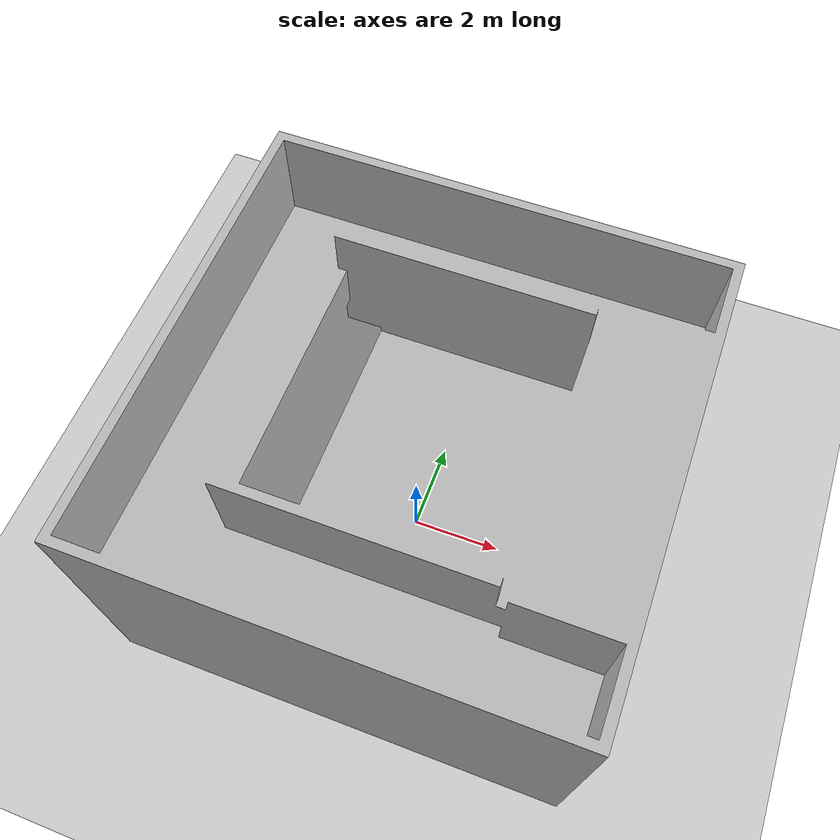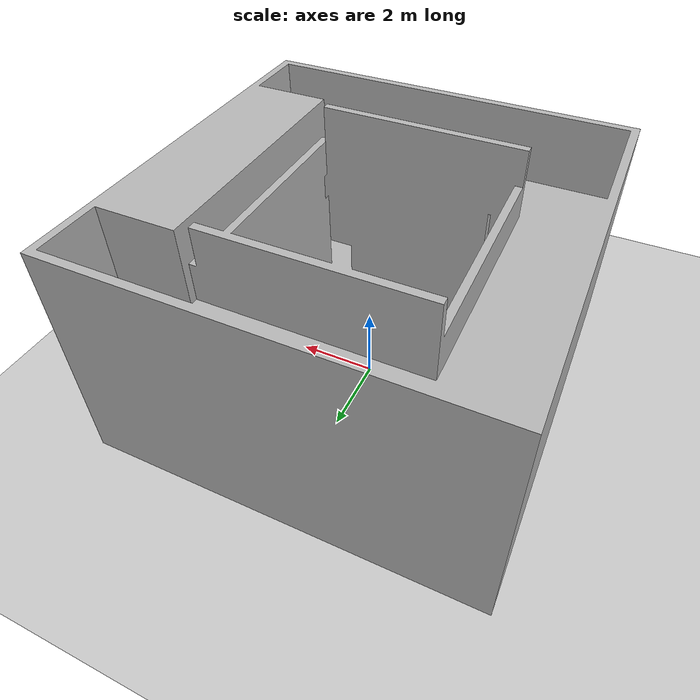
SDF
<?xml version="1.0" ?>
<sdf version="1.4">
  <world name="world">
    <include>
      <uri>model://ground_plane</uri>
    </include>

    <model name="skir">
      <static>true</static>
      <link name="body">
        <visual name="visual">
          <pose>-5 -5 0.01 0 0 0</pose>
          <geometry>
            <mesh><uri>model://skir/skir.dae</uri></mesh>
          </geometry>
        </visual>
        <collision name="collision">
          <pose>-5 -5 -0.01 0 0 0</pose>
          <geometry>
            <mesh><uri>model://skir/skir.stl</uri></mesh>
          </geometry>
        </collision>
      </link>
    </model>
    <gui fullscreen='0'>
      <camera name='user_camera'>
        <pose>5.0 5.0 50.0 0.0 1.57 1.57</pose>
        <view_controller>orbit</view_controller>
      </camera>
    </gui>
  </world>
</sdf>
